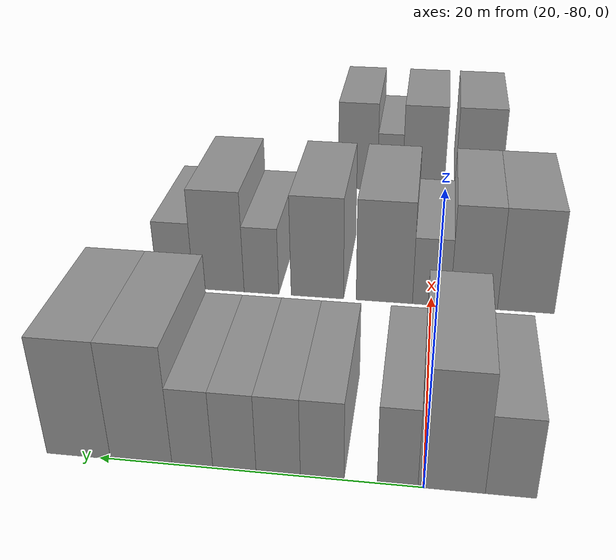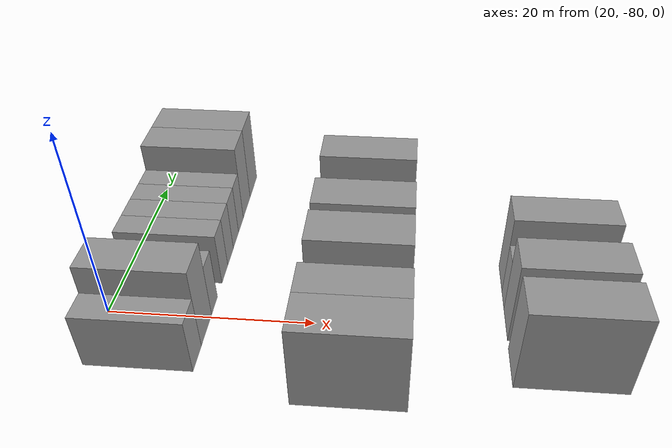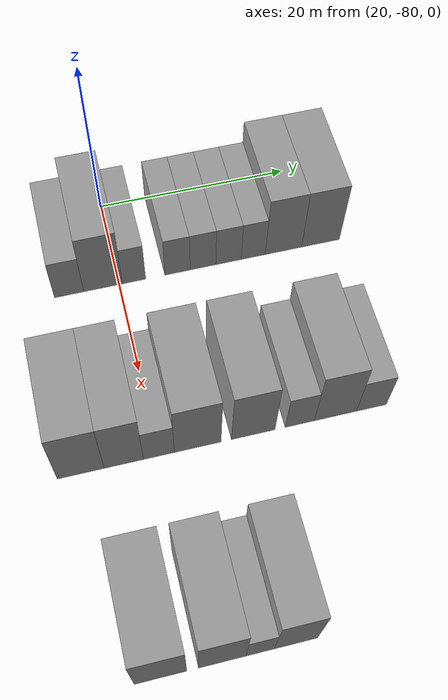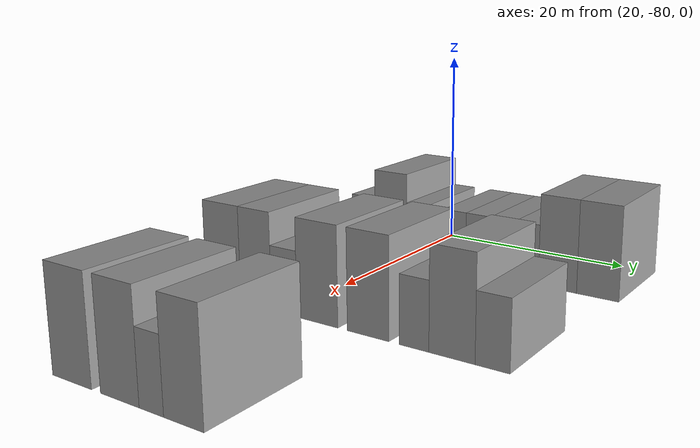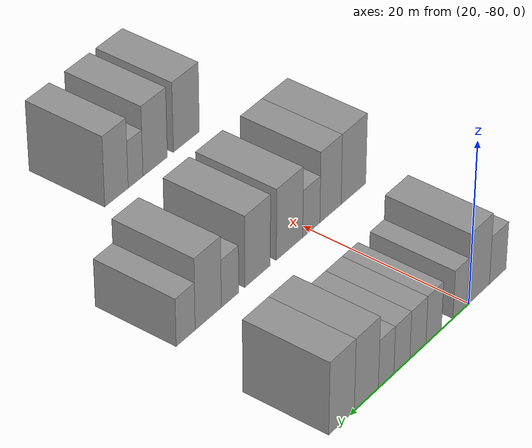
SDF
<sdf version="1.6">
 <world name="default">
  <model name="building_30">
   <static>1</static>
   <pose>25.0000 -85.1096 0 0.000000 0.000000 0.000000</pose>
   <link name="link">
    <pose>0 0 3.00 0 0 0</pose>
    <collision name="collision"><geometry><box><size>10.0000 2.9830 6.0000</size></box></geometry></collision>
    <visual name="visual">
     <cast_shadows>0</cast_shadows>
     <geometry><box><size>10.0000 2.9830 6.0000</size></box></geometry>
     <material>
      <script>
       <uri>model://grey_wall/materials/scripts</uri>
       <uri>model://grey_wall/materials/textures</uri>
       <name>vrc/grey_wall</name>
      </script>
     </material>
    </visual>
   </link>
  </model>
  <model name="building_31">
   <static>1</static>
   <pose>25.0000 -81.6322 0 0.000000 0.000000 0.000000</pose>
   <link name="link">
    <pose>0 0 4.50 0 0 0</pose>
    <collision name="collision"><geometry><box><size>10.0000 3.9718 9.0000</size></box></geometry></collision>
    <visual name="visual">
     <cast_shadows>0</cast_shadows>
     <geometry><box><size>10.0000 3.9718 9.0000</size></box></geometry>
     <material>
      <script>
       <uri>model://grey_wall/materials/scripts</uri>
       <uri>model://grey_wall/materials/textures</uri>
       <name>vrc/grey_wall</name>
      </script>
     </material>
    </visual>
   </link>
  </model>
  <model name="building_32">
   <static>1</static>
   <pose>25.0000 -78.4338 0 0.000000 0.000000 0.000000</pose>
   <link name="link">
    <pose>0 0 3.00 0 0 0</pose>
    <collision name="collision"><geometry><box><size>10.0000 2.4251 6.0000</size></box></geometry></collision>
    <visual name="visual">
     <cast_shadows>0</cast_shadows>
     <geometry><box><size>10.0000 2.4251 6.0000</size></box></geometry>
     <material>
      <script>
       <uri>model://grey_wall/materials/scripts</uri>
       <uri>model://grey_wall/materials/textures</uri>
       <name>vrc/grey_wall</name>
      </script>
     </material>
    </visual>
   </link>
  </model>
  <model name="building_33">
   <static>1</static>
   <pose>25.0000 -73.8960 0 0.000000 0.000000 0.000000</pose>
   <link name="link">
    <pose>0 0 3.00 0 0 0</pose>
    <collision name="collision"><geometry><box><size>10.0000 2.6504 6.0000</size></box></geometry></collision>
    <visual name="visual">
     <cast_shadows>0</cast_shadows>
     <geometry><box><size>10.0000 2.6504 6.0000</size></box></geometry>
     <material>
      <script>
       <uri>model://grey_wall/materials/scripts</uri>
       <uri>model://grey_wall/materials/textures</uri>
       <name>vrc/grey_wall</name>
      </script>
     </material>
    </visual>
   </link>
  </model>
  <model name="building_34">
   <static>1</static>
   <pose>25.0000 -71.2138 0 0.000000 0.000000 0.000000</pose>
   <link name="link">
    <pose>0 0 3.00 0 0 0</pose>
    <collision name="collision"><geometry><box><size>10.0000 2.7140 6.0000</size></box></geometry></collision>
    <visual name="visual">
     <cast_shadows>0</cast_shadows>
     <geometry><box><size>10.0000 2.7140 6.0000</size></box></geometry>
     <material>
      <script>
       <uri>model://grey_wall/materials/scripts</uri>
       <uri>model://grey_wall/materials/textures</uri>
       <name>vrc/grey_wall</name>
      </script>
     </material>
    </visual>
   </link>
  </model>
  <model name="building_35">
   <static>1</static>
   <pose>25.0000 -68.5138 0 0.000000 0.000000 0.000000</pose>
   <link name="link">
    <pose>0 0 3.00 0 0 0</pose>
    <collision name="collision"><geometry><box><size>10.0000 2.6860 6.0000</size></box></geometry></collision>
    <visual name="visual">
     <cast_shadows>0</cast_shadows>
     <geometry><box><size>10.0000 2.6860 6.0000</size></box></geometry>
     <material>
      <script>
       <uri>model://grey_wall/materials/scripts</uri>
       <uri>model://grey_wall/materials/textures</uri>
       <name>vrc/grey_wall</name>
      </script>
     </material>
    </visual>
   </link>
  </model>
  <model name="building_36">
   <static>1</static>
   <pose>25.0000 -65.8898 0 0.000000 0.000000 0.000000</pose>
   <link name="link">
    <pose>0 0 3.00 0 0 0</pose>
    <collision name="collision"><geometry><box><size>10.0000 2.5622 6.0000</size></box></geometry></collision>
    <visual name="visual">
     <cast_shadows>0</cast_shadows>
     <geometry><box><size>10.0000 2.5622 6.0000</size></box></geometry>
     <material>
      <script>
       <uri>model://grey_wall/materials/scripts</uri>
       <uri>model://grey_wall/materials/textures</uri>
       <name>vrc/grey_wall</name>
      </script>
     </material>
    </visual>
   </link>
  </model>
  <model name="building_37">
   <static>1</static>
   <pose>25.0000 -62.6534 0 0.000000 0.000000 0.000000</pose>
   <link name="link">
    <pose>0 0 4.50 0 0 0</pose>
    <collision name="collision"><geometry><box><size>10.0000 3.9106 9.0000</size></box></geometry></collision>
    <visual name="visual">
     <cast_shadows>0</cast_shadows>
     <geometry><box><size>10.0000 3.9106 9.0000</size></box></geometry>
     <material>
      <script>
       <uri>model://grey_wall/materials/scripts</uri>
       <uri>model://grey_wall/materials/textures</uri>
       <name>vrc/grey_wall</name>
      </script>
     </material>
    </visual>
   </link>
  </model>
  <model name="building_38">
   <static>1</static>
   <pose>25.0000 -58.6455 0 0.000000 0.000000 0.000000</pose>
   <link name="link">
    <pose>0 0 4.50 0 0 0</pose>
    <collision name="collision"><geometry><box><size>10.0000 4.1052 9.0000</size></box></geometry></collision>
    <visual name="visual">
     <cast_shadows>0</cast_shadows>
     <geometry><box><size>10.0000 4.1052 9.0000</size></box></geometry>
     <material>
      <script>
       <uri>model://grey_wall/materials/scripts</uri>
       <uri>model://grey_wall/materials/textures</uri>
       <name>vrc/grey_wall</name>
      </script>
     </material>
    </visual>
   </link>
  </model>
  <model name="building_145">
   <static>1</static>
   <pose>44.0000 -87.2860 0 0.000000 0.000000 0.000000</pose>
   <link name="link">
    <pose>0 0 4.50 0 0 0</pose>
    <collision name="collision"><geometry><box><size>10.0000 4.3459 9.0000</size></box></geometry></collision>
    <visual name="visual">
     <cast_shadows>0</cast_shadows>
     <geometry><box><size>10.0000 4.3459 9.0000</size></box></geometry>
     <material>
      <script>
       <uri>model://grey_wall/materials/scripts</uri>
       <uri>model://grey_wall/materials/textures</uri>
       <name>vrc/grey_wall</name>
      </script>
     </material>
    </visual>
   </link>
  </model>
  <model name="building_146">
   <static>1</static>
   <pose>44.0000 -83.2817 0 0.000000 0.000000 0.000000</pose>
   <link name="link">
    <pose>0 0 4.50 0 0 0</pose>
    <collision name="collision"><geometry><box><size>10.0000 3.6628 9.0000</size></box></geometry></collision>
    <visual name="visual">
     <cast_shadows>0</cast_shadows>
     <geometry><box><size>10.0000 3.6628 9.0000</size></box></geometry>
     <material>
      <script>
       <uri>model://grey_wall/materials/scripts</uri>
       <uri>model://grey_wall/materials/textures</uri>
       <name>vrc/grey_wall</name>
      </script>
     </material>
    </visual>
   </link>
  </model>
  <model name="building_147">
   <static>1</static>
   <pose>44.0000 -79.9849 0 0.000000 0.000000 0.000000</pose>
   <link name="link">
    <pose>0 0 3.00 0 0 0</pose>
    <collision name="collision"><geometry><box><size>10.0000 2.9308 6.0000</size></box></geometry></collision>
    <visual name="visual">
     <cast_shadows>0</cast_shadows>
     <geometry><box><size>10.0000 2.9308 6.0000</size></box></geometry>
     <material>
      <script>
       <uri>model://grey_wall/materials/scripts</uri>
       <uri>model://grey_wall/materials/textures</uri>
       <name>vrc/grey_wall</name>
      </script>
     </material>
    </visual>
   </link>
  </model>
  <model name="building_148">
   <static>1</static>
   <pose>44.0000 -76.2989 0 0.000000 0.000000 0.000000</pose>
   <link name="link">
    <pose>0 0 4.50 0 0 0</pose>
    <collision name="collision"><geometry><box><size>10.0000 4.4410 9.0000</size></box></geometry></collision>
    <visual name="visual">
     <cast_shadows>0</cast_shadows>
     <geometry><box><size>10.0000 4.4410 9.0000</size></box></geometry>
     <material>
      <script>
       <uri>model://grey_wall/materials/scripts</uri>
       <uri>model://grey_wall/materials/textures</uri>
       <name>vrc/grey_wall</name>
      </script>
     </material>
    </visual>
   </link>
  </model>
  <model name="building_149">
   <static>1</static>
   <pose>44.0000 -70.9763 0 0.000000 0.000000 0.000000</pose>
   <link name="link">
    <pose>0 0 4.50 0 0 0</pose>
    <collision name="collision"><geometry><box><size>10.0000 4.2043 9.0000</size></box></geometry></collision>
    <visual name="visual">
     <cast_shadows>0</cast_shadows>
     <geometry><box><size>10.0000 4.2043 9.0000</size></box></geometry>
     <material>
      <script>
       <uri>model://grey_wall/materials/scripts</uri>
       <uri>model://grey_wall/materials/textures</uri>
       <name>vrc/grey_wall</name>
      </script>
     </material>
    </visual>
   </link>
  </model>
  <model name="building_150">
   <static>1</static>
   <pose>44.0000 -66.4641 0 0.000000 0.000000 0.000000</pose>
   <link name="link">
    <pose>0 0 3.00 0 0 0</pose>
    <collision name="collision"><geometry><box><size>10.0000 2.8200 6.0000</size></box></geometry></collision>
    <visual name="visual">
     <cast_shadows>0</cast_shadows>
     <geometry><box><size>10.0000 2.8200 6.0000</size></box></geometry>
     <material>
      <script>
       <uri>model://grey_wall/materials/scripts</uri>
       <uri>model://grey_wall/materials/textures</uri>
       <name>vrc/grey_wall</name>
      </script>
     </material>
    </visual>
   </link>
  </model>
  <model name="building_151">
   <static>1</static>
   <pose>44.0000 -62.9763 0 0.000000 0.000000 0.000000</pose>
   <link name="link">
    <pose>0 0 4.50 0 0 0</pose>
    <collision name="collision"><geometry><box><size>10.0000 4.1556 9.0000</size></box></geometry></collision>
    <visual name="visual">
     <cast_shadows>0</cast_shadows>
     <geometry><box><size>10.0000 4.1556 9.0000</size></box></geometry>
     <material>
      <script>
       <uri>model://grey_wall/materials/scripts</uri>
       <uri>model://grey_wall/materials/textures</uri>
       <name>vrc/grey_wall</name>
      </script>
     </material>
    </visual>
   </link>
  </model>
  <model name="building_152">
   <static>1</static>
   <pose>44.0000 -59.4043 0 0.000000 0.000000 0.000000</pose>
   <link name="link">
    <pose>0 0 3.00 0 0 0</pose>
    <collision name="collision"><geometry><box><size>10.0000 2.9884 6.0000</size></box></geometry></collision>
    <visual name="visual">
     <cast_shadows>0</cast_shadows>
     <geometry><box><size>10.0000 2.9884 6.0000</size></box></geometry>
     <material>
      <script>
       <uri>model://grey_wall/materials/scripts</uri>
       <uri>model://grey_wall/materials/textures</uri>
       <name>vrc/grey_wall</name>
      </script>
     </material>
    </visual>
   </link>
  </model>
  <model name="building_267">
   <static>1</static>
   <pose>63.0000 -83.9814 0 0.000000 0.000000 0.000000</pose>
   <link name="link">
    <pose>0 0 4.50 0 0 0</pose>
    <collision name="collision"><geometry><box><size>10.0000 4.4293 9.0000</size></box></geometry></collision>
    <visual name="visual">
     <cast_shadows>0</cast_shadows>
     <geometry><box><size>10.0000 4.4293 9.0000</size></box></geometry>
     <material>
      <script>
       <uri>model://grey_wall/materials/scripts</uri>
       <uri>model://grey_wall/materials/textures</uri>
       <name>vrc/grey_wall</name>
      </script>
     </material>
    </visual>
   </link>
  </model>
  <model name="building_268">
   <static>1</static>
   <pose>63.0000 -78.7381 0 0.000000 0.000000 0.000000</pose>
   <link name="link">
    <pose>0 0 4.50 0 0 0</pose>
    <collision name="collision"><geometry><box><size>10.0000 4.0572 9.0000</size></box></geometry></collision>
    <visual name="visual">
     <cast_shadows>0</cast_shadows>
     <geometry><box><size>10.0000 4.0572 9.0000</size></box></geometry>
     <material>
      <script>
       <uri>model://grey_wall/materials/scripts</uri>
       <uri>model://grey_wall/materials/textures</uri>
       <name>vrc/grey_wall</name>
      </script>
     </material>
    </visual>
   </link>
  </model>
  <model name="building_269">
   <static>1</static>
   <pose>63.0000 -75.4926 0 0.000000 0.000000 0.000000</pose>
   <link name="link">
    <pose>0 0 3.00 0 0 0</pose>
    <collision name="collision"><geometry><box><size>10.0000 2.4338 6.0000</size></box></geometry></collision>
    <visual name="visual">
     <cast_shadows>0</cast_shadows>
     <geometry><box><size>10.0000 2.4338 6.0000</size></box></geometry>
     <material>
      <script>
       <uri>model://grey_wall/materials/scripts</uri>
       <uri>model://grey_wall/materials/textures</uri>
       <name>vrc/grey_wall</name>
      </script>
     </material>
    </visual>
   </link>
  </model>
  <model name="building_270">
   <static>1</static>
   <pose>63.0000 -72.3753 0 0.000000 0.000000 0.000000</pose>
   <link name="link">
    <pose>0 0 4.50 0 0 0</pose>
    <collision name="collision"><geometry><box><size>10.0000 3.8007 9.0000</size></box></geometry></collision>
    <visual name="visual">
     <cast_shadows>0</cast_shadows>
     <geometry><box><size>10.0000 3.8007 9.0000</size></box></geometry>
     <material>
      <script>
       <uri>model://grey_wall/materials/scripts</uri>
       <uri>model://grey_wall/materials/textures</uri>
       <name>vrc/grey_wall</name>
      </script>
     </material>
    </visual>
   </link>
  </model>
 </world>
</sdf>
